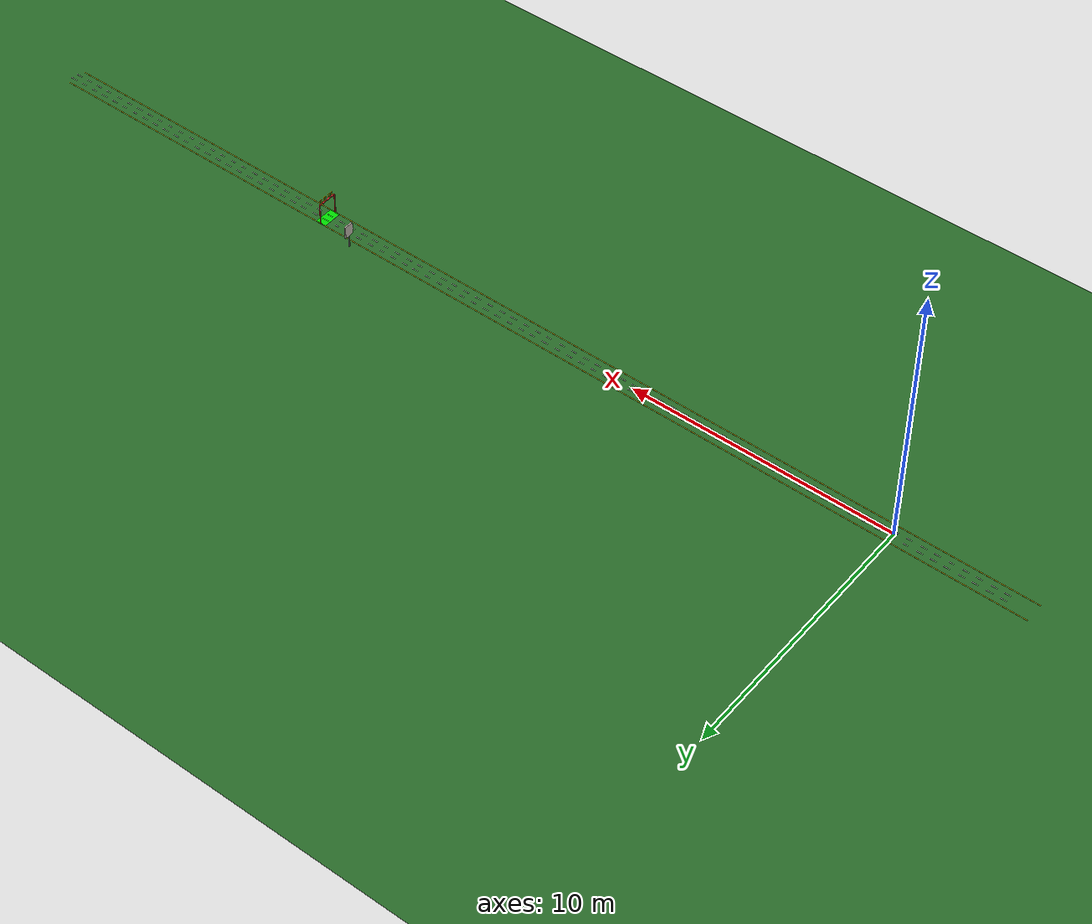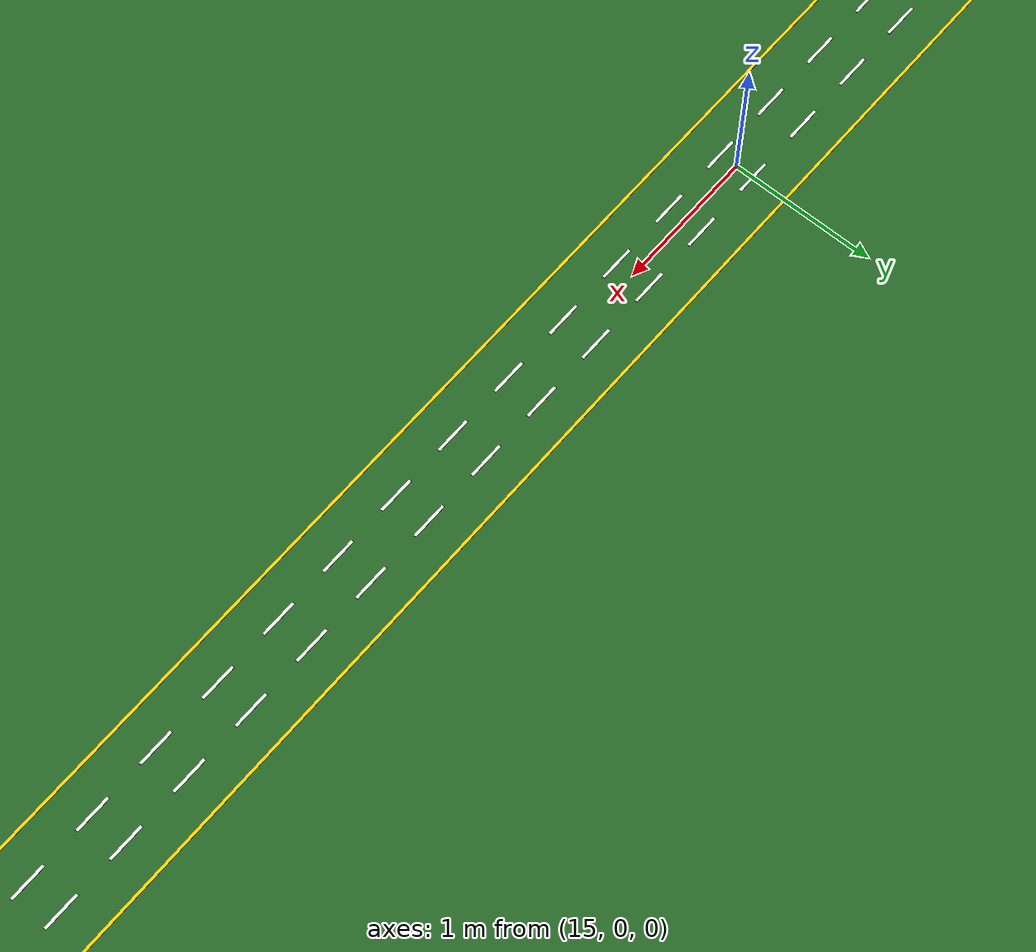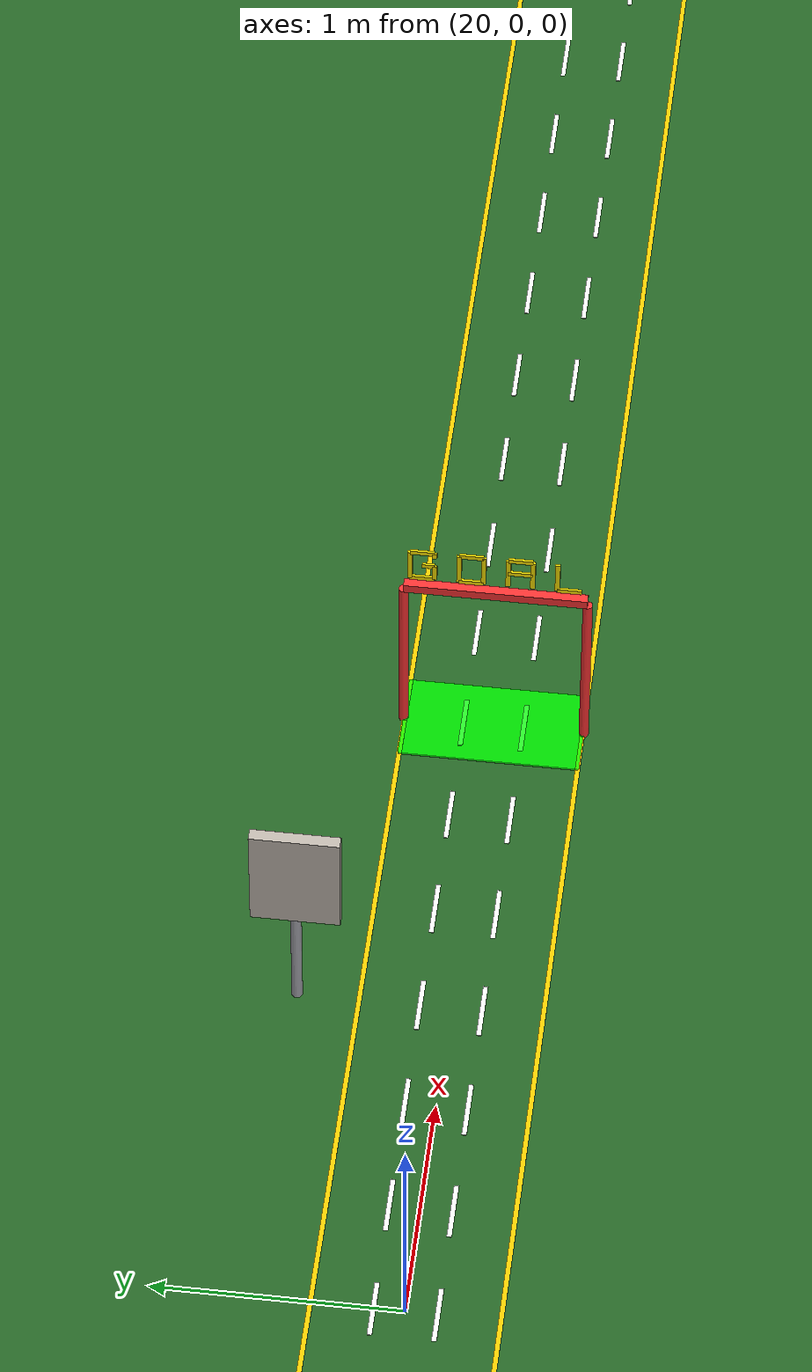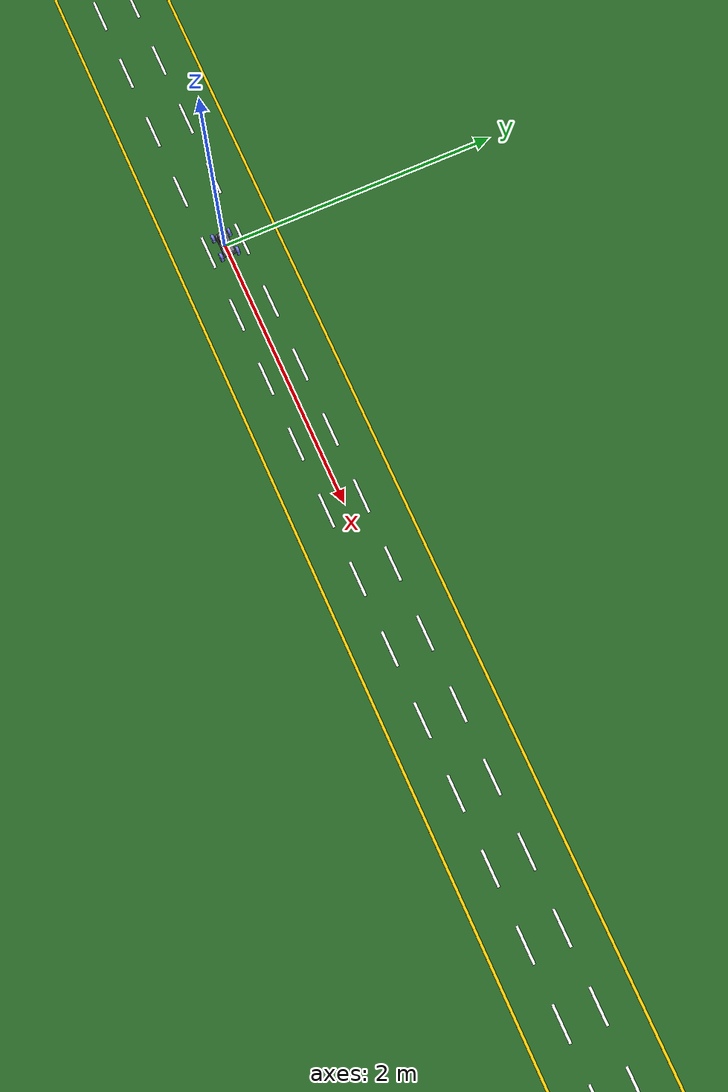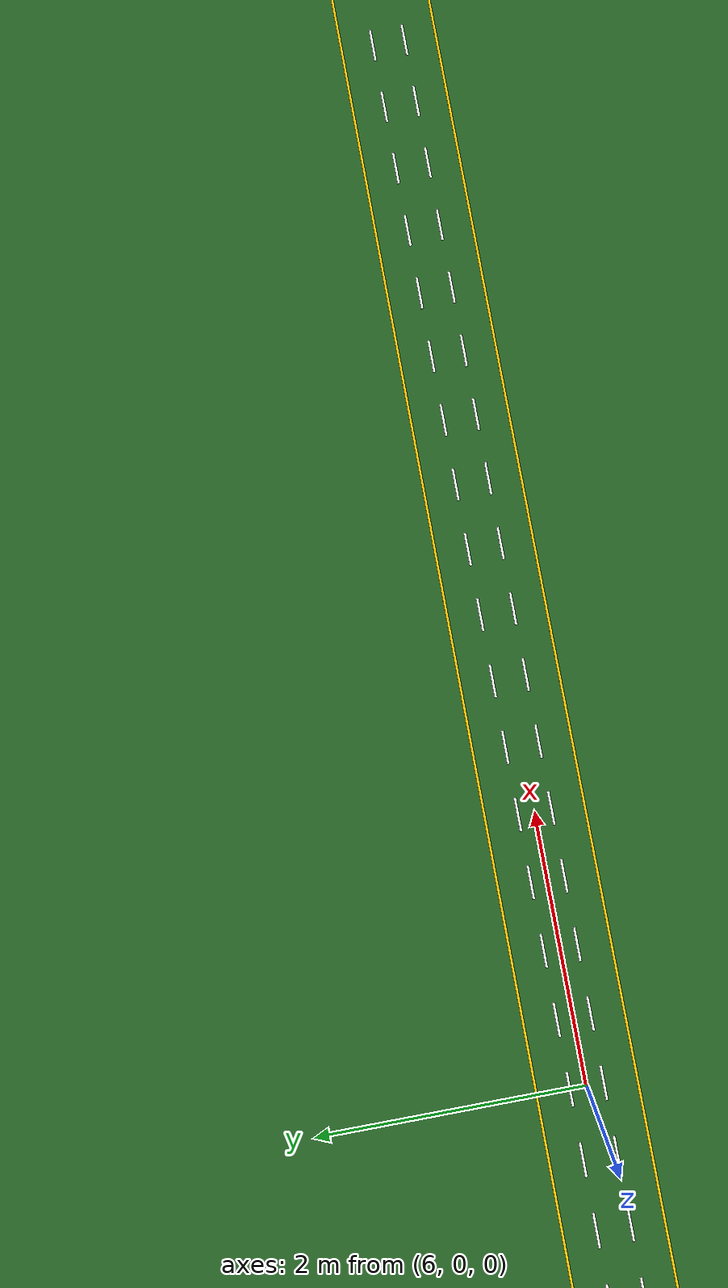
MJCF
<mujoco>
  <compiler autolimits="true"/>

  <!-- Setting to adjust camera/mouse sensitivity to match the car's scale.
       Prevents the massive camera jump on mouse scroll since the initial track was huge. -->
  <statistic extent="3.0" center="0 0 0"/>

  <asset>
    <texture name="grid" type="2d" builtin="checker" width="512" height="512" rgb1=".1 .2 .3" rgb2=".2 .3 .4"/>
    <material name="grid" texture="grid" texrepeat="1 1" texuniform="true" reflectance=".2"/>
    <!-- Speed limit sign texture (path relative to this XML file's directory) -->
    <texture name="speed_limit_tex" type="2d" file="stopsign.png"/>
    <material name="speed_limit_mat" texture="speed_limit_tex" texrepeat="1 1" texuniform="false"/>
  </asset>

  <default>
    <joint damping=".03" />
    <default class="wheel">
      <geom type="cylinder" size=".03 .01" rgba=".5 .5 1 1"/>
    </default>
    <default class="decor">
      <site type="box" rgba=".5 1 .5 1"/>
    </default>
    <!-- Steer knuckle joint: larger force range so position actuator can hold angle -->
    <default class="steer">
      <joint type="hinge" axis="0 0 1" range="-0.6 0.6" damping="0.1" actuatorfrcrange="-5 5"/>
    </default>
  </default>

  <worldbody>
    <!-- Wide grassy background -->
    <geom name="grass" type="plane" pos="15 0 -0.01" size="30 20 .01" rgba="0.15 0.4 0.15 1"/>

    <!-- 3-lane asphalt road (based on 15cm car width, 25cm lane width. Total width 75cm -> half-width 0.375) -->
    <geom name="road_asphalt" type="plane" pos="15 0 0" size="20 0.375 .01" rgba="0.2 0.2 0.2 1"/>

    <!-- White dashed lane lines (2cm thick, 1.5m dash length, 1.5m gap) -->
    <geom name="dash_-4.0_L" type="box" pos="-4.0 -0.125 0.002" size="0.125 0.01 0.001" rgba="1 1 1 1" contype="0" conaffinity="0"/>
    <geom name="dash_-4.0_R" type="box" pos="-4.0  0.125 0.002" size="0.125 0.01 0.001" rgba="1 1 1 1" contype="0" conaffinity="0"/>
    <geom name="dash_-3.5_L" type="box" pos="-3.5 -0.125 0.002" size="0.125 0.01 0.001" rgba="1 1 1 1" contype="0" conaffinity="0"/>
    <geom name="dash_-3.5_R" type="box" pos="-3.5  0.125 0.002" size="0.125 0.01 0.001" rgba="1 1 1 1" contype="0" conaffinity="0"/>
    <geom name="dash_-3.0_L" type="box" pos="-3.0 -0.125 0.002" size="0.125 0.01 0.001" rgba="1 1 1 1" contype="0" conaffinity="0"/>
    <geom name="dash_-3.0_R" type="box" pos="-3.0  0.125 0.002" size="0.125 0.01 0.001" rgba="1 1 1 1" contype="0" conaffinity="0"/>
    <geom name="dash_-2.5_L" type="box" pos="-2.5 -0.125 0.002" size="0.125 0.01 0.001" rgba="1 1 1 1" contype="0" conaffinity="0"/>
    <geom name="dash_-2.5_R" type="box" pos="-2.5  0.125 0.002" size="0.125 0.01 0.001" rgba="1 1 1 1" contype="0" conaffinity="0"/>
    <geom name="dash_-2.0_L" type="box" pos="-2.0 -0.125 0.002" size="0.125 0.01 0.001" rgba="1 1 1 1" contype="0" conaffinity="0"/>
    <geom name="dash_-2.0_R" type="box" pos="-2.0  0.125 0.002" size="0.125 0.01 0.001" rgba="1 1 1 1" contype="0" conaffinity="0"/>
    <geom name="dash_-1.5_L" type="box" pos="-1.5 -0.125 0.002" size="0.125 0.01 0.001" rgba="1 1 1 1" contype="0" conaffinity="0"/>
    <geom name="dash_-1.5_R" type="box" pos="-1.5  0.125 0.002" size="0.125 0.01 0.001" rgba="1 1 1 1" contype="0" conaffinity="0"/>
    <geom name="dash_-1.0_L" type="box" pos="-1.0 -0.125 0.002" size="0.125 0.01 0.001" rgba="1 1 1 1" contype="0" conaffinity="0"/>
    <geom name="dash_-1.0_R" type="box" pos="-1.0  0.125 0.002" size="0.125 0.01 0.001" rgba="1 1 1 1" contype="0" conaffinity="0"/>
    <geom name="dash_-0.5_L" type="box" pos="-0.5 -0.125 0.002" size="0.125 0.01 0.001" rgba="1 1 1 1" contype="0" conaffinity="0"/>
    <geom name="dash_-0.5_R" type="box" pos="-0.5  0.125 0.002" size="0.125 0.01 0.001" rgba="1 1 1 1" contype="0" conaffinity="0"/>
    <geom name="dash_0.0_L" type="box" pos="0.0 -0.125 0.002" size="0.125 0.01 0.001" rgba="1 1 1 1" contype="0" conaffinity="0"/>
    <geom name="dash_0.0_R" type="box" pos="0.0  0.125 0.002" size="0.125 0.01 0.001" rgba="1 1 1 1" contype="0" conaffinity="0"/>
    <geom name="dash_0.5_L" type="box" pos="0.5 -0.125 0.002" size="0.125 0.01 0.001" rgba="1 1 1 1" contype="0" conaffinity="0"/>
    <geom name="dash_0.5_R" type="box" pos="0.5  0.125 0.002" size="0.125 0.01 0.001" rgba="1 1 1 1" contype="0" conaffinity="0"/>
    <geom name="dash_1.0_L" type="box" pos="1.0 -0.125 0.002" size="0.125 0.01 0.001" rgba="1 1 1 1" contype="0" conaffinity="0"/>
    <geom name="dash_1.0_R" type="box" pos="1.0  0.125 0.002" size="0.125 0.01 0.001" rgba="1 1 1 1" contype="0" conaffinity="0"/>
    <geom name="dash_1.5_L" type="box" pos="1.5 -0.125 0.002" size="0.125 0.01 0.001" rgba="1 1 1 1" contype="0" conaffinity="0"/>
    <geom name="dash_1.5_R" type="box" pos="1.5  0.125 0.002" size="0.125 0.01 0.001" rgba="1 1 1 1" contype="0" conaffinity="0"/>
    <geom name="dash_2.0_L" type="box" pos="2.0 -0.125 0.002" size="0.125 0.01 0.001" rgba="1 1 1 1" contype="0" conaffinity="0"/>
    <geom name="dash_2.0_R" type="box" pos="2.0  0.125 0.002" size="0.125 0.01 0.001" rgba="1 1 1 1" contype="0" conaffinity="0"/>
    <geom name="dash_2.5_L" type="box" pos="2.5 -0.125 0.002" size="0.125 0.01 0.001" rgba="1 1 1 1" contype="0" conaffinity="0"/>
    <geom name="dash_2.5_R" type="box" pos="2.5  0.125 0.002" size="0.125 0.01 0.001" rgba="1 1 1 1" contype="0" conaffinity="0"/>
    <geom name="dash_3.0_L" type="box" pos="3.0 -0.125 0.002" size="0.125 0.01 0.001" rgba="1 1 1 1" contype="0" conaffinity="0"/>
    <geom name="dash_3.0_R" type="box" pos="3.0  0.125 0.002" size="0.125 0.01 0.001" rgba="1 1 1 1" contype="0" conaffinity="0"/>
    <geom name="dash_3.5_L" type="box" pos="3.5 -0.125 0.002" size="0.125 0.01 0.001" rgba="1 1 1 1" contype="0" conaffinity="0"/>
    <geom name="dash_3.5_R" type="box" pos="3.5  0.125 0.002" size="0.125 0.01 0.001" rgba="1 1 1 1" contype="0" conaffinity="0"/>
    <geom name="dash_4.0_L" type="box" pos="4.0 -0.125 0.002" size="0.125 0.01 0.001" rgba="1 1 1 1" contype="0" conaffinity="0"/>
    <geom name="dash_4.0_R" type="box" pos="4.0  0.125 0.002" size="0.125 0.01 0.001" rgba="1 1 1 1" contype="0" conaffinity="0"/>
    <geom name="dash_4.5_L" type="box" pos="4.5 -0.125 0.002" size="0.125 0.01 0.001" rgba="1 1 1 1" contype="0" conaffinity="0"/>
    <geom name="dash_4.5_R" type="box" pos="4.5  0.125 0.002" size="0.125 0.01 0.001" rgba="1 1 1 1" contype="0" conaffinity="0"/>
    <geom name="dash_5.0_L" type="box" pos="5.0 -0.125 0.002" size="0.125 0.01 0.001" rgba="1 1 1 1" contype="0" conaffinity="0"/>
    <geom name="dash_5.0_R" type="box" pos="5.0  0.125 0.002" size="0.125 0.01 0.001" rgba="1 1 1 1" contype="0" conaffinity="0"/>
    <geom name="dash_5.5_L" type="box" pos="5.5 -0.125 0.002" size="0.125 0.01 0.001" rgba="1 1 1 1" contype="0" conaffinity="0"/>
    <geom name="dash_5.5_R" type="box" pos="5.5  0.125 0.002" size="0.125 0.01 0.001" rgba="1 1 1 1" contype="0" conaffinity="0"/>
    <geom name="dash_6.0_L" type="box" pos="6.0 -0.125 0.002" size="0.125 0.01 0.001" rgba="1 1 1 1" contype="0" conaffinity="0"/>
    <geom name="dash_6.0_R" type="box" pos="6.0  0.125 0.002" size="0.125 0.01 0.001" rgba="1 1 1 1" contype="0" conaffinity="0"/>
    <geom name="dash_6.5_L" type="box" pos="6.5 -0.125 0.002" size="0.125 0.01 0.001" rgba="1 1 1 1" contype="0" conaffinity="0"/>
    <geom name="dash_6.5_R" type="box" pos="6.5  0.125 0.002" size="0.125 0.01 0.001" rgba="1 1 1 1" contype="0" conaffinity="0"/>
    <geom name="dash_7.0_L" type="box" pos="7.0 -0.125 0.002" size="0.125 0.01 0.001" rgba="1 1 1 1" contype="0" conaffinity="0"/>
    <geom name="dash_7.0_R" type="box" pos="7.0  0.125 0.002" size="0.125 0.01 0.001" rgba="1 1 1 1" contype="0" conaffinity="0"/>
    <geom name="dash_7.5_L" type="box" pos="7.5 -0.125 0.002" size="0.125 0.01 0.001" rgba="1 1 1 1" contype="0" conaffinity="0"/>
    <geom name="dash_7.5_R" type="box" pos="7.5  0.125 0.002" size="0.125 0.01 0.001" rgba="1 1 1 1" contype="0" conaffinity="0"/>
    <geom name="dash_8.0_L" type="box" pos="8.0 -0.125 0.002" size="0.125 0.01 0.001" rgba="1 1 1 1" contype="0" conaffinity="0"/>
    <geom name="dash_8.0_R" type="box" pos="8.0  0.125 0.002" size="0.125 0.01 0.001" rgba="1 1 1 1" contype="0" conaffinity="0"/>
    <geom name="dash_8.5_L" type="box" pos="8.5 -0.125 0.002" size="0.125 0.01 0.001" rgba="1 1 1 1" contype="0" conaffinity="0"/>
    <geom name="dash_8.5_R" type="box" pos="8.5  0.125 0.002" size="0.125 0.01 0.001" rgba="1 1 1 1" contype="0" conaffinity="0"/>
    <geom name="dash_9.0_L" type="box" pos="9.0 -0.125 0.002" size="0.125 0.01 0.001" rgba="1 1 1 1" contype="0" conaffinity="0"/>
    <geom name="dash_9.0_R" type="box" pos="9.0  0.125 0.002" size="0.125 0.01 0.001" rgba="1 1 1 1" contype="0" conaffinity="0"/>
    <geom name="dash_9.5_L" type="box" pos="9.5 -0.125 0.002" size="0.125 0.01 0.001" rgba="1 1 1 1" contype="0" conaffinity="0"/>
    <geom name="dash_9.5_R" type="box" pos="9.5  0.125 0.002" size="0.125 0.01 0.001" rgba="1 1 1 1" contype="0" conaffinity="0"/>
    <geom name="dash_10.0_L" type="box" pos="10.0 -0.125 0.002" size="0.125 0.01 0.001" rgba="1 1 1 1" contype="0" conaffinity="0"/>
    <geom name="dash_10.0_R" type="box" pos="10.0  0.125 0.002" size="0.125 0.01 0.001" rgba="1 1 1 1" contype="0" conaffinity="0"/>
    <geom name="dash_10.5_L" type="box" pos="10.5 -0.125 0.002" size="0.125 0.01 0.001" rgba="1 1 1 1" contype="0" conaffinity="0"/>
    <geom name="dash_10.5_R" type="box" pos="10.5  0.125 0.002" size="0.125 0.01 0.001" rgba="1 1 1 1" contype="0" conaffinity="0"/>
    <geom name="dash_11.0_L" type="box" pos="11.0 -0.125 0.002" size="0.125 0.01 0.001" rgba="1 1 1 1" contype="0" conaffinity="0"/>
    <geom name="dash_11.0_R" type="box" pos="11.0  0.125 0.002" size="0.125 0.01 0.001" rgba="1 1 1 1" contype="0" conaffinity="0"/>
    <geom name="dash_11.5_L" type="box" pos="11.5 -0.125 0.002" size="0.125 0.01 0.001" rgba="1 1 1 1" contype="0" conaffinity="0"/>
    <geom name="dash_11.5_R" type="box" pos="11.5  0.125 0.002" size="0.125 0.01 0.001" rgba="1 1 1 1" contype="0" conaffinity="0"/>
    <geom name="dash_12.0_L" type="box" pos="12.0 -0.125 0.002" size="0.125 0.01 0.001" rgba="1 1 1 1" contype="0" conaffinity="0"/>
    <geom name="dash_12.0_R" type="box" pos="12.0  0.125 0.002" size="0.125 0.01 0.001" rgba="1 1 1 1" contype="0" conaffinity="0"/>
    <geom name="dash_12.5_L" type="box" pos="12.5 -0.125 0.002" size="0.125 0.01 0.001" rgba="1 1 1 1" contype="0" conaffinity="0"/>
    <geom name="dash_12.5_R" type="box" pos="12.5  0.125 0.002" size="0.125 0.01 0.001" rgba="1 1 1 1" contype="0" conaffinity="0"/>
    <geom name="dash_13.0_L" type="box" pos="13.0 -0.125 0.002" size="0.125 0.01 0.001" rgba="1 1 1 1" contype="0" conaffinity="0"/>
    <geom name="dash_13.0_R" type="box" pos="13.0  0.125 0.002" size="0.125 0.01 0.001" rgba="1 1 1 1" contype="0" conaffinity="0"/>
    <geom name="dash_13.5_L" type="box" pos="13.5 -0.125 0.002" size="0.125 0.01 0.001" rgba="1 1 1 1" contype="0" conaffinity="0"/>
    <geom name="dash_13.5_R" type="box" pos="13.5  0.125 0.002" size="0.125 0.01 0.001" rgba="1 1 1 1" contype="0" conaffinity="0"/>
    <geom name="dash_14.0_L" type="box" pos="14.0 -0.125 0.002" size="0.125 0.01 0.001" rgba="1 1 1 1" contype="0" conaffinity="0"/>
    <geom name="dash_14.0_R" type="box" pos="14.0  0.125 0.002" size="0.125 0.01 0.001" rgba="1 1 1 1" contype="0" conaffinity="0"/>
    <geom name="dash_14.5_L" type="box" pos="14.5 -0.125 0.002" size="0.125 0.01 0.001" rgba="1 1 1 1" contype="0" conaffinity="0"/>
    <geom name="dash_14.5_R" type="box" pos="14.5  0.125 0.002" size="0.125 0.01 0.001" rgba="1 1 1 1" contype="0" conaffinity="0"/>
    <geom name="dash_15.0_L" type="box" pos="15.0 -0.125 0.002" size="0.125 0.01 0.001" rgba="1 1 1 1" contype="0" conaffinity="0"/>
    <geom name="dash_15.0_R" type="box" pos="15.0  0.125 0.002" size="0.125 0.01 0.001" rgba="1 1 1 1" contype="0" conaffinity="0"/>
    <geom name="dash_15.5_L" type="box" pos="15.5 -0.125 0.002" size="0.125 0.01 0.001" rgba="1 1 1 1" contype="0" conaffinity="0"/>
    <geom name="dash_15.5_R" type="box" pos="15.5  0.125 0.002" size="0.125 0.01 0.001" rgba="1 1 1 1" contype="0" conaffinity="0"/>
    <geom name="dash_16.0_L" type="box" pos="16.0 -0.125 0.002" size="0.125 0.01 0.001" rgba="1 1 1 1" contype="0" conaffinity="0"/>
    <geom name="dash_16.0_R" type="box" pos="16.0  0.125 0.002" size="0.125 0.01 0.001" rgba="1 1 1 1" contype="0" conaffinity="0"/>
    <geom name="dash_16.5_L" type="box" pos="16.5 -0.125 0.002" size="0.125 0.01 0.001" rgba="1 1 1 1" contype="0" conaffinity="0"/>
    <geom name="dash_16.5_R" type="box" pos="16.5  0.125 0.002" size="0.125 0.01 0.001" rgba="1 1 1 1" contype="0" conaffinity="0"/>
    <geom name="dash_17.0_L" type="box" pos="17.0 -0.125 0.002" size="0.125 0.01 0.001" rgba="1 1 1 1" contype="0" conaffinity="0"/>
    <geom name="dash_17.0_R" type="box" pos="17.0  0.125 0.002" size="0.125 0.01 0.001" rgba="1 1 1 1" contype="0" conaffinity="0"/>
    <geom name="dash_17.5_L" type="box" pos="17.5 -0.125 0.002" size="0.125 0.01 0.001" rgba="1 1 1 1" contype="0" conaffinity="0"/>
    <geom name="dash_17.5_R" type="box" pos="17.5  0.125 0.002" size="0.125 0.01 0.001" rgba="1 1 1 1" contype="0" conaffinity="0"/>
    <geom name="dash_18.0_L" type="box" pos="18.0 -0.125 0.002" size="0.125 0.01 0.001" rgba="1 1 1 1" contype="0" conaffinity="0"/>
    <geom name="dash_18.0_R" type="box" pos="18.0  0.125 0.002" size="0.125 0.01 0.001" rgba="1 1 1 1" contype="0" conaffinity="0"/>
    <geom name="dash_18.5_L" type="box" pos="18.5 -0.125 0.002" size="0.125 0.01 0.001" rgba="1 1 1 1" contype="0" conaffinity="0"/>
    <geom name="dash_18.5_R" type="box" pos="18.5  0.125 0.002" size="0.125 0.01 0.001" rgba="1 1 1 1" contype="0" conaffinity="0"/>
    <geom name="dash_19.0_L" type="box" pos="19.0 -0.125 0.002" size="0.125 0.01 0.001" rgba="1 1 1 1" contype="0" conaffinity="0"/>
    <geom name="dash_19.0_R" type="box" pos="19.0  0.125 0.002" size="0.125 0.01 0.001" rgba="1 1 1 1" contype="0" conaffinity="0"/>
    <geom name="dash_19.5_L" type="box" pos="19.5 -0.125 0.002" size="0.125 0.01 0.001" rgba="1 1 1 1" contype="0" conaffinity="0"/>
    <geom name="dash_19.5_R" type="box" pos="19.5  0.125 0.002" size="0.125 0.01 0.001" rgba="1 1 1 1" contype="0" conaffinity="0"/>
    <geom name="dash_20.0_L" type="box" pos="20.0 -0.125 0.002" size="0.125 0.01 0.001" rgba="1 1 1 1" contype="0" conaffinity="0"/>
    <geom name="dash_20.0_R" type="box" pos="20.0  0.125 0.002" size="0.125 0.01 0.001" rgba="1 1 1 1" contype="0" conaffinity="0"/>
    <geom name="dash_20.5_L" type="box" pos="20.5 -0.125 0.002" size="0.125 0.01 0.001" rgba="1 1 1 1" contype="0" conaffinity="0"/>
    <geom name="dash_20.5_R" type="box" pos="20.5  0.125 0.002" size="0.125 0.01 0.001" rgba="1 1 1 1" contype="0" conaffinity="0"/>
    <geom name="dash_21.0_L" type="box" pos="21.0 -0.125 0.002" size="0.125 0.01 0.001" rgba="1 1 1 1" contype="0" conaffinity="0"/>
    <geom name="dash_21.0_R" type="box" pos="21.0  0.125 0.002" size="0.125 0.01 0.001" rgba="1 1 1 1" contype="0" conaffinity="0"/>
    <geom name="dash_21.5_L" type="box" pos="21.5 -0.125 0.002" size="0.125 0.01 0.001" rgba="1 1 1 1" contype="0" conaffinity="0"/>
    <geom name="dash_21.5_R" type="box" pos="21.5  0.125 0.002" size="0.125 0.01 0.001" rgba="1 1 1 1" contype="0" conaffinity="0"/>
    <geom name="dash_22.0_L" type="box" pos="22.0 -0.125 0.002" size="0.125 0.01 0.001" rgba="1 1 1 1" contype="0" conaffinity="0"/>
    <geom name="dash_22.0_R" type="box" pos="22.0  0.125 0.002" size="0.125 0.01 0.001" rgba="1 1 1 1" contype="0" conaffinity="0"/>
    <geom name="dash_22.5_L" type="box" pos="22.5 -0.125 0.002" size="0.125 0.01 0.001" rgba="1 1 1 1" contype="0" conaffinity="0"/>
    <geom name="dash_22.5_R" type="box" pos="22.5  0.125 0.002" size="0.125 0.01 0.001" rgba="1 1 1 1" contype="0" conaffinity="0"/>
    <geom name="dash_23.0_L" type="box" pos="23.0 -0.125 0.002" size="0.125 0.01 0.001" rgba="1 1 1 1" contype="0" conaffinity="0"/>
    <geom name="dash_23.0_R" type="box" pos="23.0  0.125 0.002" size="0.125 0.01 0.001" rgba="1 1 1 1" contype="0" conaffinity="0"/>
    <geom name="dash_23.5_L" type="box" pos="23.5 -0.125 0.002" size="0.125 0.01 0.001" rgba="1 1 1 1" contype="0" conaffinity="0"/>
    <geom name="dash_23.5_R" type="box" pos="23.5  0.125 0.002" size="0.125 0.01 0.001" rgba="1 1 1 1" contype="0" conaffinity="0"/>
    <geom name="dash_24.0_L" type="box" pos="24.0 -0.125 0.002" size="0.125 0.01 0.001" rgba="1 1 1 1" contype="0" conaffinity="0"/>
    <geom name="dash_24.0_R" type="box" pos="24.0  0.125 0.002" size="0.125 0.01 0.001" rgba="1 1 1 1" contype="0" conaffinity="0"/>
    <geom name="dash_24.5_L" type="box" pos="24.5 -0.125 0.002" size="0.125 0.01 0.001" rgba="1 1 1 1" contype="0" conaffinity="0"/>
    <geom name="dash_24.5_R" type="box" pos="24.5  0.125 0.002" size="0.125 0.01 0.001" rgba="1 1 1 1" contype="0" conaffinity="0"/>
    <geom name="dash_25.0_L" type="box" pos="25.0 -0.125 0.002" size="0.125 0.01 0.001" rgba="1 1 1 1" contype="0" conaffinity="0"/>
    <geom name="dash_25.0_R" type="box" pos="25.0  0.125 0.002" size="0.125 0.01 0.001" rgba="1 1 1 1" contype="0" conaffinity="0"/>
    <geom name="dash_25.5_L" type="box" pos="25.5 -0.125 0.002" size="0.125 0.01 0.001" rgba="1 1 1 1" contype="0" conaffinity="0"/>
    <geom name="dash_25.5_R" type="box" pos="25.5  0.125 0.002" size="0.125 0.01 0.001" rgba="1 1 1 1" contype="0" conaffinity="0"/>
    <geom name="dash_26.0_L" type="box" pos="26.0 -0.125 0.002" size="0.125 0.01 0.001" rgba="1 1 1 1" contype="0" conaffinity="0"/>
    <geom name="dash_26.0_R" type="box" pos="26.0  0.125 0.002" size="0.125 0.01 0.001" rgba="1 1 1 1" contype="0" conaffinity="0"/>
    <geom name="dash_26.5_L" type="box" pos="26.5 -0.125 0.002" size="0.125 0.01 0.001" rgba="1 1 1 1" contype="0" conaffinity="0"/>
    <geom name="dash_26.5_R" type="box" pos="26.5  0.125 0.002" size="0.125 0.01 0.001" rgba="1 1 1 1" contype="0" conaffinity="0"/>
    <geom name="dash_27.0_L" type="box" pos="27.0 -0.125 0.002" size="0.125 0.01 0.001" rgba="1 1 1 1" contype="0" conaffinity="0"/>
    <geom name="dash_27.0_R" type="box" pos="27.0  0.125 0.002" size="0.125 0.01 0.001" rgba="1 1 1 1" contype="0" conaffinity="0"/>
    <geom name="dash_27.5_L" type="box" pos="27.5 -0.125 0.002" size="0.125 0.01 0.001" rgba="1 1 1 1" contype="0" conaffinity="0"/>
    <geom name="dash_27.5_R" type="box" pos="27.5  0.125 0.002" size="0.125 0.01 0.001" rgba="1 1 1 1" contype="0" conaffinity="0"/>
    <geom name="dash_28.0_L" type="box" pos="28.0 -0.125 0.002" size="0.125 0.01 0.001" rgba="1 1 1 1" contype="0" conaffinity="0"/>
    <geom name="dash_28.0_R" type="box" pos="28.0  0.125 0.002" size="0.125 0.01 0.001" rgba="1 1 1 1" contype="0" conaffinity="0"/>
    <geom name="dash_28.5_L" type="box" pos="28.5 -0.125 0.002" size="0.125 0.01 0.001" rgba="1 1 1 1" contype="0" conaffinity="0"/>
    <geom name="dash_28.5_R" type="box" pos="28.5  0.125 0.002" size="0.125 0.01 0.001" rgba="1 1 1 1" contype="0" conaffinity="0"/>
    <geom name="dash_29.0_L" type="box" pos="29.0 -0.125 0.002" size="0.125 0.01 0.001" rgba="1 1 1 1" contype="0" conaffinity="0"/>
    <geom name="dash_29.0_R" type="box" pos="29.0  0.125 0.002" size="0.125 0.01 0.001" rgba="1 1 1 1" contype="0" conaffinity="0"/>
    <geom name="dash_29.5_L" type="box" pos="29.5 -0.125 0.002" size="0.125 0.01 0.001" rgba="1 1 1 1" contype="0" conaffinity="0"/>
    <geom name="dash_29.5_R" type="box" pos="29.5  0.125 0.002" size="0.125 0.01 0.001" rgba="1 1 1 1" contype="0" conaffinity="0"/>
    <geom name="dash_30.0_L" type="box" pos="30.0 -0.125 0.002" size="0.125 0.01 0.001" rgba="1 1 1 1" contype="0" conaffinity="0"/>
    <geom name="dash_30.0_R" type="box" pos="30.0  0.125 0.002" size="0.125 0.01 0.001" rgba="1 1 1 1" contype="0" conaffinity="0"/>
    <geom name="dash_30.5_L" type="box" pos="30.5 -0.125 0.002" size="0.125 0.01 0.001" rgba="1 1 1 1" contype="0" conaffinity="0"/>
    <geom name="dash_30.5_R" type="box" pos="30.5  0.125 0.002" size="0.125 0.01 0.001" rgba="1 1 1 1" contype="0" conaffinity="0"/>
    <geom name="dash_31.0_L" type="box" pos="31.0 -0.125 0.002" size="0.125 0.01 0.001" rgba="1 1 1 1" contype="0" conaffinity="0"/>
    <geom name="dash_31.0_R" type="box" pos="31.0  0.125 0.002" size="0.125 0.01 0.001" rgba="1 1 1 1" contype="0" conaffinity="0"/>
    <geom name="dash_31.5_L" type="box" pos="31.5 -0.125 0.002" size="0.125 0.01 0.001" rgba="1 1 1 1" contype="0" conaffinity="0"/>
    <geom name="dash_31.5_R" type="box" pos="31.5  0.125 0.002" size="0.125 0.01 0.001" rgba="1 1 1 1" contype="0" conaffinity="0"/>
    <geom name="dash_32.0_L" type="box" pos="32.0 -0.125 0.002" size="0.125 0.01 0.001" rgba="1 1 1 1" contype="0" conaffinity="0"/>
    <geom name="dash_32.0_R" type="box" pos="32.0  0.125 0.002" size="0.125 0.01 0.001" rgba="1 1 1 1" contype="0" conaffinity="0"/>
    <geom name="dash_32.5_L" type="box" pos="32.5 -0.125 0.002" size="0.125 0.01 0.001" rgba="1 1 1 1" contype="0" conaffinity="0"/>
    <geom name="dash_32.5_R" type="box" pos="32.5  0.125 0.002" size="0.125 0.01 0.001" rgba="1 1 1 1" contype="0" conaffinity="0"/>
    <geom name="dash_33.0_L" type="box" pos="33.0 -0.125 0.002" size="0.125 0.01 0.001" rgba="1 1 1 1" contype="0" conaffinity="0"/>
    <geom name="dash_33.0_R" type="box" pos="33.0  0.125 0.002" size="0.125 0.01 0.001" rgba="1 1 1 1" contype="0" conaffinity="0"/>
    <geom name="dash_33.5_L" type="box" pos="33.5 -0.125 0.002" size="0.125 0.01 0.001" rgba="1 1 1 1" contype="0" conaffinity="0"/>
    <geom name="dash_33.5_R" type="box" pos="33.5  0.125 0.002" size="0.125 0.01 0.001" rgba="1 1 1 1" contype="0" conaffinity="0"/>
    <geom name="dash_34.0_L" type="box" pos="34.0 -0.125 0.002" size="0.125 0.01 0.001" rgba="1 1 1 1" contype="0" conaffinity="0"/>
    <geom name="dash_34.0_R" type="box" pos="34.0  0.125 0.002" size="0.125 0.01 0.001" rgba="1 1 1 1" contype="0" conaffinity="0"/>
    <geom name="dash_34.5_L" type="box" pos="34.5 -0.125 0.002" size="0.125 0.01 0.001" rgba="1 1 1 1" contype="0" conaffinity="0"/>
    <geom name="dash_34.5_R" type="box" pos="34.5  0.125 0.002" size="0.125 0.01 0.001" rgba="1 1 1 1" contype="0" conaffinity="0"/>
    <geom name="dash_35.0_L" type="box" pos="35.0 -0.125 0.002" size="0.125 0.01 0.001" rgba="1 1 1 1" contype="0" conaffinity="0"/>
    <geom name="dash_35.0_R" type="box" pos="35.0  0.125 0.002" size="0.125 0.01 0.001" rgba="1 1 1 1" contype="0" conaffinity="0"/>

    <!-- Yellow edge lines (matched to road width) -->
    <geom name="edge_line_L" type="box" pos="15 -0.37 0.002" size="20 0.01 0.001" rgba="1 0.8 0 1" contype="0" conaffinity="0"/>
    <geom name="edge_line_R" type="box" pos="15  0.37 0.002" size="20 0.01 0.001" rgba="1 0.8 0 1" contype="0" conaffinity="0"/>

    <!-- Goal line and visual arch at 23.0m (scaled proportionally to the narrowed width) -->
    <site name="goal_site" pos="23.0 0 0.005" size="0.2 0.375 0.005" type="box" rgba="0 1 0 0.8"/>
    <geom name="goal_pole_L" type="cylinder" pos="23.0 -0.375 0.4" size="0.02 0.4" rgba="1 0.2 0.2 1"/>
    <geom name="goal_pole_R" type="cylinder" pos="23.0  0.375 0.4" size="0.02 0.4" rgba="1 0.2 0.2 1"/>
    <geom name="goal_top" type="box" pos="23.0 0 0.82" size="0.02 0.375 0.02" rgba="1 0.2 0.2 1"/>

    <!-- === Speed Limit Sign (x=21.5m, 1.5m before goal, right side of road y=0.62) ===
         The sign faces the approaching driver (visible on ±X faces of the thin box). -->
    <!-- Metal post -->
    <geom name="sign_post" type="cylinder"
          pos="21.5 0.62 0.40" size="0.022 0.40"
          rgba="0.65 0.65 0.68 1" contype="0" conaffinity="0"/>
    <!-- Sign board: thin in X (0.025m), wide in Y (0.36m total), tall in Z (0.48m total)
         texture mapped on the large ±X faces via YZ coordinates -->
    <geom name="sign_board" type="box"
          pos="21.5 0.62 0.73" size="0.24 0.18 0.025"
          euler="0 -90 0"
          material="speed_limit_mat"
          contype="0" conaffinity="0"/>

    <!-- Floating "GOAL" text (bright yellow neon sign effect, hovering above the goal arch) -->
    <!-- "G" (Y center: 0.3) -->
    <geom name="G_top" type="box" pos="23.0 0.3 1.025" size="0.005 0.05 0.01" rgba="1 0.9 0 1" contype="0" conaffinity="0"/>
    <geom name="G_bot" type="box" pos="23.0 0.3 0.875" size="0.005 0.05 0.01" rgba="1 0.9 0 1" contype="0" conaffinity="0"/>
    <geom name="G_left" type="box" pos="23.0 0.35 0.95" size="0.005 0.01 0.075" rgba="1 0.9 0 1" contype="0" conaffinity="0"/>
    <geom name="G_right_bot" type="box" pos="23.0 0.25 0.9125" size="0.005 0.01 0.0375" rgba="1 0.9 0 1" contype="0" conaffinity="0"/>
    <geom name="G_mid" type="box" pos="23.0 0.275 0.95" size="0.005 0.025 0.01" rgba="1 0.9 0 1" contype="0" conaffinity="0"/>
    <geom name="G_nub" type="box" pos="23.0 0.25 1.0125" size="0.005 0.01 0.0125" rgba="1 0.9 0 1" contype="0" conaffinity="0"/>

    <!-- "O" (Y center: 0.1) -->
    <geom name="O_top" type="box" pos="23.0 0.1 1.025" size="0.005 0.05 0.01" rgba="1 0.9 0 1" contype="0" conaffinity="0"/>
    <geom name="O_bot" type="box" pos="23.0 0.1 0.875" size="0.005 0.05 0.01" rgba="1 0.9 0 1" contype="0" conaffinity="0"/>
    <geom name="O_left" type="box" pos="23.0 0.15 0.95" size="0.005 0.01 0.075" rgba="1 0.9 0 1" contype="0" conaffinity="0"/>
    <geom name="O_right" type="box" pos="23.0 0.05 0.95" size="0.005 0.01 0.075" rgba="1 0.9 0 1" contype="0" conaffinity="0"/>

    <!-- "A" (Y center: -0.1) -->
    <geom name="A_top" type="box" pos="23.0 -0.1 1.025" size="0.005 0.05 0.01" rgba="1 0.9 0 1" contype="0" conaffinity="0"/>
    <geom name="A_mid" type="box" pos="23.0 -0.1 0.95" size="0.005 0.05 0.01" rgba="1 0.9 0 1" contype="0" conaffinity="0"/>
    <geom name="A_left" type="box" pos="23.0 -0.05 0.95" size="0.005 0.01 0.075" rgba="1 0.9 0 1" contype="0" conaffinity="0"/>
    <geom name="A_right" type="box" pos="23.0 -0.15 0.95" size="0.005 0.01 0.075" rgba="1 0.9 0 1" contype="0" conaffinity="0"/>

    <!-- "L" (Y center: -0.3) -->
    <geom name="L_left" type="box" pos="23.0 -0.25 0.95" size="0.005 0.01 0.075" rgba="1 0.9 0 1" contype="0" conaffinity="0"/>
    <geom name="L_bot" type="box" pos="23.0 -0.3 0.875" size="0.005 0.05 0.01" rgba="1 0.9 0 1" contype="0" conaffinity="0"/>
    <body name="car" pos="0 0 .03">
      <freejoint/>
      <light name="top light" pos="0 0 2" mode="trackcom" diffuse=".4 .4 .4"/>
      <!-- Box chassis: main body slab (taller floor) -->
      <geom name="chassis_body" type="box" pos="0.005 0 0.012" size="0.077 0.040 0.020" rgba=".45 .45 .5 1"/>
      <!-- Tall cabin enclosure -->
      <geom name="chassis_cabin" type="box" pos="0.00 0 0.068" size="0.045 0.033 0.034" rgba=".38 .38 .43 1"/>
      <!-- Front axle strut (non-collideable visual) -->
      <geom name="axle_front" type="box" pos="0.08 0 0" size="0.010 0.058 0.007" rgba=".3 .3 .35 1" contype="0" conaffinity="0"/>
      <!-- Rear axle strut (non-collideable visual) -->
      <geom name="axle_rear" type="box" pos="-0.07 0 0" size="0.010 0.058 0.007" rgba=".3 .3 .35 1" contype="0" conaffinity="0"/>
      <!-- Steering column (fixed to chassis, does not rotate) -->
      <geom name="steering_column" type="cylinder" pos="0.046 0 0.040"
            size="0.003 0.016" zaxis="-0.70 0 0.70"
            rgba=".18 .18 .18 1" contype="0" conaffinity="0"/>
      <body name="steer_wheel_body" pos="0.028 0 0.058" zaxis="-0.707 0 0.707">
        <inertial pos="0 0 0" mass="0.005" diaginertia="1e-6 1e-6 1e-6"/>
        <!-- Joint: hinge around local Z = steering-column axis; high damping to resist drift -->
        <joint name="steer_visual" type="hinge" axis="0 0 1" damping="500" actuatorfrcrange="-0 0"/>
        <!-- Hub -->
        <geom name="sw_hub" type="sphere" pos="0 0 0"
              size="0.006" rgba=".25 .25 .25 1" contype="0" conaffinity="0"/>
        <geom name="sw_r0"  type="capsule" pos=" 0.01739  0.00466 0" size="0.0018 0.0047" zaxis="-0.259  0.966 0" rgba=".15 .15 .15 1" contype="0" conaffinity="0"/>
        <geom name="sw_r1"  type="capsule" pos=" 0.01273  0.01273 0" size="0.0018 0.0047" zaxis="-0.707  0.707 0" rgba=".15 .15 .15 1" contype="0" conaffinity="0"/>
        <geom name="sw_r2"  type="capsule" pos=" 0.00466  0.01739 0" size="0.0018 0.0047" zaxis="-0.966  0.259 0" rgba=".15 .15 .15 1" contype="0" conaffinity="0"/>
        <geom name="sw_r3"  type="capsule" pos="-0.00466  0.01739 0" size="0.0018 0.0047" zaxis="-0.966 -0.259 0" rgba=".15 .15 .15 1" contype="0" conaffinity="0"/>
        <geom name="sw_r4"  type="capsule" pos="-0.01273  0.01273 0" size="0.0018 0.0047" zaxis="-0.707 -0.707 0" rgba=".15 .15 .15 1" contype="0" conaffinity="0"/>
        <geom name="sw_r5"  type="capsule" pos="-0.01739  0.00466 0" size="0.0018 0.0047" zaxis="-0.259 -0.966 0" rgba=".15 .15 .15 1" contype="0" conaffinity="0"/>
        <geom name="sw_r6"  type="capsule" pos="-0.01739 -0.00466 0" size="0.0018 0.0047" zaxis=" 0.259 -0.966 0" rgba=".15 .15 .15 1" contype="0" conaffinity="0"/>
        <geom name="sw_r7"  type="capsule" pos="-0.01273 -0.01273 0" size="0.0018 0.0047" zaxis=" 0.707 -0.707 0" rgba=".15 .15 .15 1" contype="0" conaffinity="0"/>
        <geom name="sw_r8"  type="capsule" pos="-0.00466 -0.01739 0" size="0.0018 0.0047" zaxis=" 0.966 -0.259 0" rgba=".15 .15 .15 1" contype="0" conaffinity="0"/>
        <geom name="sw_r9"  type="capsule" pos=" 0.00466 -0.01739 0" size="0.0018 0.0047" zaxis=" 0.966  0.259 0" rgba=".15 .15 .15 1" contype="0" conaffinity="0"/>
        <geom name="sw_r10" type="capsule" pos=" 0.01273 -0.01273 0" size="0.0018 0.0047" zaxis=" 0.707  0.707 0" rgba=".15 .15 .15 1" contype="0" conaffinity="0"/>
        <geom name="sw_r11" type="capsule" pos=" 0.01739 -0.00466 0" size="0.0018 0.0047" zaxis=" 0.259  0.966 0" rgba=".15 .15 .15 1" contype="0" conaffinity="0"/>
        <geom name="sw_sp0" type="capsule" pos="-0.00900  0.00000 0" size="0.0020 0.0090" zaxis="-1.000  0.000 0" rgba=".25 .25 .25 1" contype="0" conaffinity="0"/>
        <geom name="sw_sp1" type="capsule" pos=" 0.00450 -0.00779 0" size="0.0020 0.0090" zaxis=" 0.500 -0.866 0" rgba=".25 .25 .25 1" contype="0" conaffinity="0"/>
        <geom name="sw_sp2" type="capsule" pos=" 0.00450  0.00779 0" size="0.0020 0.0090" zaxis=" 0.500  0.866 0" rgba=".25 .25 .25 1" contype="0" conaffinity="0"/>
      </body>
      <!-- Driver first-person camera: looking forward ~20° downward to see steering wheel -->
      <!-- xyaxes: cam_x=(0,-1,0)=car_right, cam_y=(0.342,0,0.940)=up-tilted-fwd → looks in +X and -Z -->
      <camera name="driver_cam" pos="0.005 0 0.092" xyaxes="0 -1 0 0.342 0 0.940" fovy="75"/>
      <!-- Front-left: outer body = steer (yaw), inner body = roll (spin) -->
      <body name="front_left_steer" pos=".08 .06 0">
        <inertial pos="0 0 0" mass="0.001" diaginertia="1e-6 1e-6 1e-6"/>
        <joint name="steer_left" class="steer"/>
        <body name="front_left_wheel" zaxis="0 1 0">
          <joint name="roll_front_left" type="hinge" axis="0 0 1" damping="0.002"/>
          <geom class="wheel" priority="1"/>
          <site class="decor" size=".006 .025 .012"/>
          <site class="decor" size=".025 .006 .012"/>
        </body>
      </body>
      <!-- Front-right: outer body = steer (yaw), inner body = roll (spin) -->
      <body name="front_right_steer" pos=".08 -.06 0">
        <inertial pos="0 0 0" mass="0.001" diaginertia="1e-6 1e-6 1e-6"/>
        <joint name="steer_right" class="steer"/>
        <body name="front_right_wheel" zaxis="0 1 0">
          <joint name="roll_front_right" type="hinge" axis="0 0 1" damping="0.002"/>
          <geom class="wheel" priority="1"/>
          <site class="decor" size=".006 .025 .012"/>
          <site class="decor" size=".025 .006 .012"/>
        </body>
      </body>
      <light name="front light" pos=".1 0 .02" dir="2 0 -1" diffuse="1 1 1"/>
      <body name="left wheel" pos="-.07 .06 0" zaxis="0 1 0">
        <joint name="left"/>
        <geom class="wheel"/>
        <site class="decor" size=".006 .025 .012"/>
        <site class="decor" size=".025 .006 .012"/>
      </body>
      <body name="right wheel" pos="-.07 -.06 0" zaxis="0 1 0">
        <joint name="right"/>
        <geom class="wheel"/>
        <site class="decor" size=".006 .025 .012"/>
        <site class="decor" size=".025 .006 .012"/>
      </body>
    </body>
  </worldbody>

  <tendon>
    <!-- Rear wheel drive: both rear wheels spin together -->
    <fixed name="forward">
      <joint joint="left" coef=".5"/>
      <joint joint="right" coef=".5"/>
    </fixed>
    <!-- Front steering: turn knuckle controls both front wheels -->
    <fixed name="turn">
      <joint joint="steer_left" coef=".5"/>
      <joint joint="steer_right" coef=".5"/>
    </fixed>
  </tendon>

  <actuator>
    <motor name="forward" tendon="forward" ctrlrange="-1 1"/>
    <!-- position actuator: ctrl sets target angle (rad) for front wheel steering -->
    <position name="turn" tendon="turn" kp="10" ctrlrange="-0.5 0.5"/>
  </actuator>

  <sensor>
    <jointactuatorfrc name="right" joint="right"/>
    <jointactuatorfrc name="left" joint="left"/>
  </sensor>
</mujoco>
